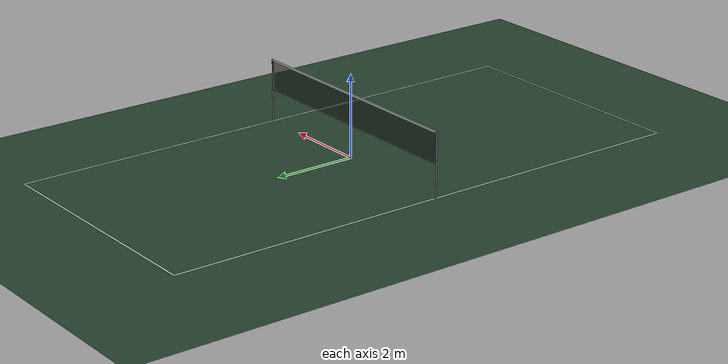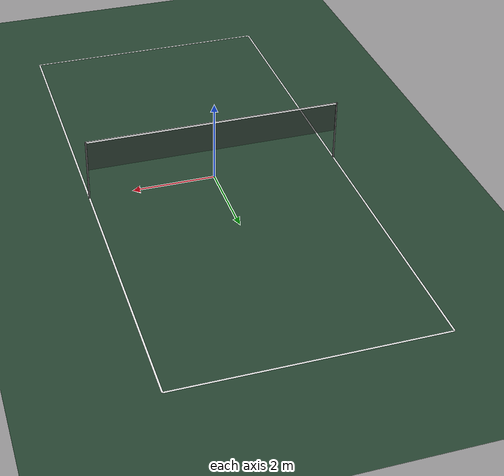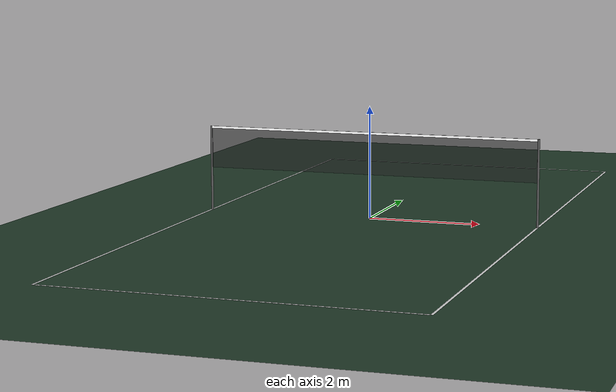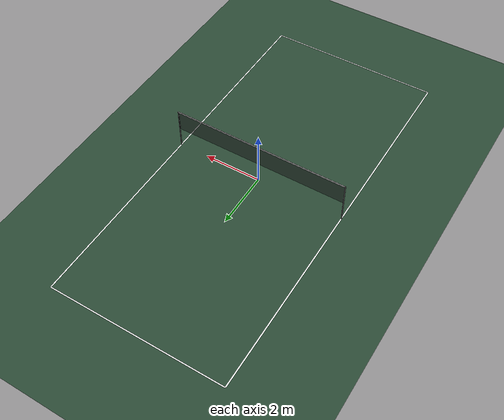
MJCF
<mujoco model="badminton_court">
  <asset>
    <texture name="court_grid" type="2d" builtin="checker" rgb1="0.18 0.30 0.22"
             rgb2="0.16 0.28 0.20" width="512" height="512"/>
    <material name="court_mat" texture="court_grid" texrepeat="8 8" reflectance="0.05"/>
    <material name="net_mat" rgba="0.15 0.15 0.15 0.55"/>
  </asset>
  <worldbody>
    <light pos="0 -3 5" dir="0 0.4 -1" diffuse="0.9 0.9 0.9"/>
    <light pos="0 4 5" dir="0 -0.4 -1" diffuse="0.6 0.6 0.6"/>
    <geom name="floor" type="plane" size="6.1 13.4 0.1"
          material="court_mat" solref="0.01 1.0"/>
    <geom name="line_left" type="box" size="0.02 6.7 0.001"
          pos="-3.05 0 0.001" rgba="1 1 1 1" contype="0" conaffinity="0"/>
    <geom name="line_right" type="box" size="0.02 6.7 0.001"
          pos="3.05 0 0.001" rgba="1 1 1 1" contype="0" conaffinity="0"/>
    <geom name="line_far" type="box" size="3.05 0.02 0.001"
          pos="0 6.7 0.001" rgba="1 1 1 1" contype="0" conaffinity="0"/>
    <geom name="line_near" type="box" size="3.05 0.02 0.001"
          pos="0 -6.7 0.001" rgba="1 1 1 1" contype="0" conaffinity="0"/>
    <body name="net_body" pos="0 0 0">
      <geom name="net" type="box" size="3.05 0.01 0.38"
            pos="0 0 1.17" material="net_mat" solref="0.01 1.0"/>
      <geom name="net_post_l" type="cylinder" size="0.02 0.775"
            pos="-3.05 0 0.775" rgba="0.3 0.3 0.3 1"
            contype="0" conaffinity="0"/>
      <geom name="net_post_r" type="cylinder" size="0.02 0.775"
            pos="3.05 0 0.775" rgba="0.3 0.3 0.3 1"
            contype="0" conaffinity="0"/>
      <geom name="net_tape" type="box" size="3.05 0.012 0.02"
            pos="0 0 1.53" rgba="1 1 1 1"
            contype="0" conaffinity="0"/>
    </body>
  </worldbody>
</mujoco>
